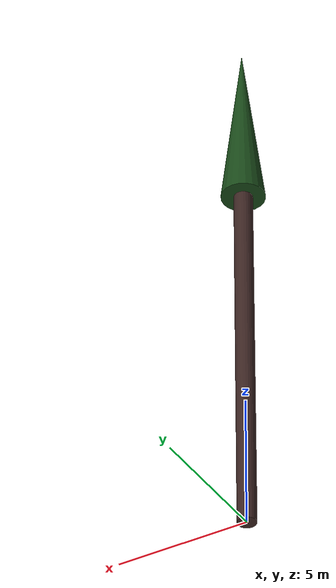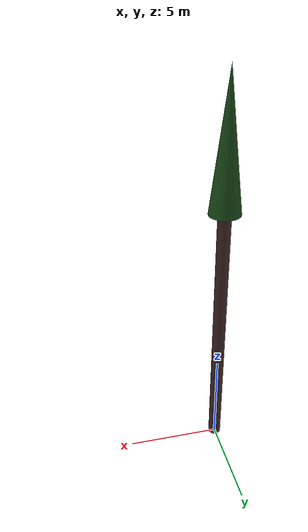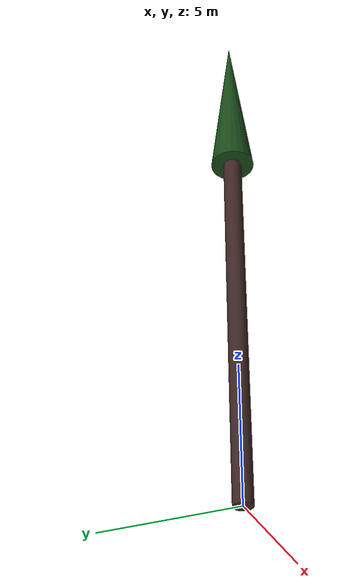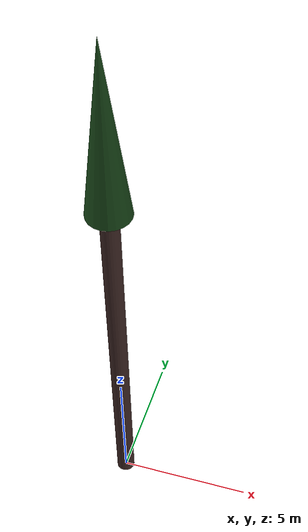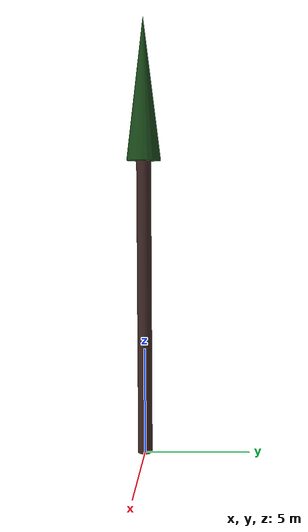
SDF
<?xml version="1.0" ?>
<sdf version="1.10">
  <model name="cypres_provence_00">
    <static>true</static>

    <!-- Tronc -->
    <link name="trunk">
      <pose>0 0 6.971399449522935 0 0 0</pose>
      <visual name="trunk_visual">
        <geometry>
          <cylinder>
            <radius>0.3429303989047552</radius>
            <length>13.94279889904587</length>
          </cylinder>
        </geometry>
        <material>
          <ambient>0.24 0.15 0.14 1</ambient>
          <diffuse>0.24 0.15 0.14 1</diffuse>
          <specular>0.1 0.1 0.1 1</specular>
        </material>
      </visual>
      <collision name="trunk_collision">
        <geometry>
          <cylinder>
            <radius>0.3429303989047552</radius>
            <length>13.94279889904587</length>
          </cylinder>
        </geometry>
      </collision>
    </link>

    <!-- Feuillage -->
    <link name="crown">
      <pose>0 0 17.25103422981269 0 0 0</pose>
      <visual name="crown_visual">
        <geometry>
          <cone>
              <radius>0.8054992540187148</radius>
              <length>6.616470661533639</length>
            </cone>
        </geometry>
        <material>
          <ambient>0.10 0.29 0.10 1</ambient>
          <diffuse>0.10 0.29 0.10 1</diffuse>
          <specular>0.1 0.1 0.1 1</specular>
        </material>
      </visual>
      <collision name="crown_collision">
        <geometry>
          <sphere>
            <radius>0.6443994032149719</radius>
          </sphere>
        </geometry>
      </collision>
    </link>

    <!-- Joint tronc-feuillage -->
    <joint name="trunk_crown_joint" type="fixed">
      <parent>trunk</parent>
      <child>crown</child>
    </joint>

  </model>
</sdf>
